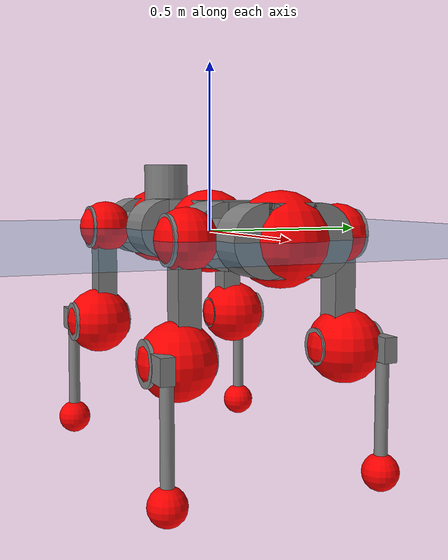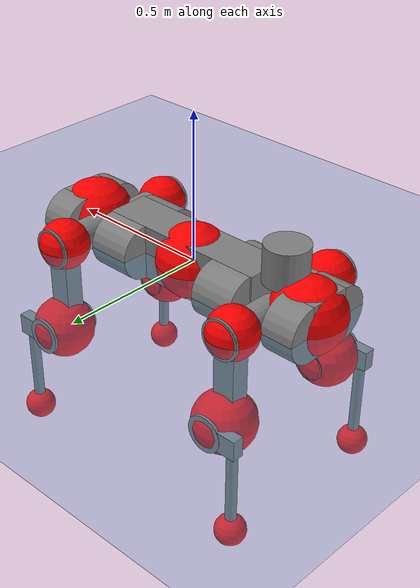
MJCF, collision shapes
<mujoco model="anymal_c">
  <compiler angle="radian" assetdir="assets" balanceinertia="true" inertiafromgeom="false"/>

  <option timestep="0.005" density="1.2" viscosity="2e-05"/>

  <size nkey="1"/>

  <visual>
    <quality shadowsize="8192"/>
    <map shadowclip="0.5"/>
  </visual>

  <default>
    <default class="/">
      <material specular="0" shininess="0.25"/>
      <geom contype="0" conaffinity="0" group="1" solref="-1000 -80"/>
      <site size="0.01 0.005 0.005" group="5"/>
      <general forcelimited="true" forcerange="-80 80" biastype="affine" gainprm="80" biasprm="0 -80 -2"/>
      <default class="anymal_c">
        <joint armature="0.01" damping="0.01" frictionloss="0.1"/>
        <default class="visual">
          <geom type="mesh" group="2"/>
          <default class="visual_zflip"/>
        </default>
        <default class="collision">
          <geom type="cylinder" group="3"/>
          <default class="foot">
            <geom size="0.03 0 0" type="sphere" condim="6" priority="1" friction="0.8 0.02 0.01" solimp="0.015 1 0.03"/>
          </default>
        </default>
      </default>
      <default class="reward_collision_sphere">
        <geom group="5" rgba="1 0 0 1"/>
      </default>
    </default>
  </default>

  <asset>
    <texture type="skybox" colorspace="auto" name="//unnamed_texture_0" builtin="gradient" rgb1="0.95 0.95 0.95" rgb2="0.95 0.95 0.95" width="100" height="600"/>
    <texture type="2d" colorspace="auto" name="texplane" builtin="checker" rgb1="0.345 0.575 0.748" rgb2="0.345 0.575 0.748" markrgb="1 1 1" width="512" height="512"/>
    <texture type="2d" colorspace="linear" name="base" file="base.png"/>
    <texture type="2d" colorspace="linear" name="top_shell" file="top_shell.png"/>
    <texture type="2d" colorspace="linear" name="bottom_shell" file="bottom_shell.png"/>
    <texture type="2d" colorspace="linear" name="remote" file="remote.png"/>
    <texture type="2d" colorspace="linear" name="hatch" file="hatch.png"/>
    <texture type="2d" colorspace="linear" name="handle" file="handle.png"/>
    <texture type="2d" colorspace="linear" name="face" file="face.png"/>
    <texture type="2d" colorspace="linear" name="battery" file="battery.png"/>
    <texture type="2d" colorspace="linear" name="lidar_cage" file="lidar_cage.png"/>
    <texture type="2d" colorspace="linear" name="depth_camera" file="depth_camera.png"/>
    <texture type="2d" colorspace="linear" name="wide_angle_camera" file="wide_angle_camera.png"/>
    <texture type="2d" colorspace="linear" name="lidar" file="lidar.png"/>
    <texture type="2d" colorspace="linear" name="drive" file="drive.png"/>
    <texture type="2d" colorspace="linear" name="hip_l" file="hip_l.png"/>
    <texture type="2d" colorspace="linear" name="shank_l" file="shank_l.png"/>
    <texture type="2d" colorspace="linear" name="foot" file="foot.png"/>
    <texture type="2d" colorspace="linear" name="thigh" file="thigh.png"/>
    <texture type="2d" colorspace="linear" name="shank_r" file="shank_r.png"/>
    <texture type="2d" colorspace="linear" name="hip_r" file="hip_r.png"/>
    <material name="MatPlane" class="/" texture="texplane" texuniform="true" texrepeat="2 2" specular="0.9" shininess="0.5"/>
    <material name="black_plastic" class="/" rgba="0.007 0.007 0.007 1"/>
    <material name="green" class="/" rgba="0.052 0.178 0.033 1"/>
    <material name="red" class="/" rgba="0.178 0.006 0.005 1"/>
    <material name="yellow" class="/" rgba="0.178 0.119 0.006 1"/>
    <material name="lwl" class="/" rgba="0.8 0.8 0.8 1"/>
    <material name="base" class="/" texture="base"/>
    <material name="top_shell" class="/" texture="top_shell"/>
    <material name="bottom_shell" class="/" texture="bottom_shell"/>
    <material name="hip_l" class="/" texture="hip_l"/>
    <material name="thigh" class="/" texture="thigh"/>
    <material name="shank_l" class="/" texture="shank_l"/>
    <material name="foot" class="/" texture="foot"/>
    <material name="hip_r" class="/" texture="hip_r"/>
    <material name="shank" class="/" texture="shank_r"/>
    <material name="hatch" class="/" texture="hatch"/>
    <material name="remote" class="/" texture="remote"/>
    <material name="handle" class="/" texture="handle"/>
    <material name="face" class="/" texture="face"/>
    <material name="depth_camera" class="/" texture="depth_camera"/>
    <material name="wide_angle_camera" class="/" texture="wide_angle_camera"/>
    <material name="battery" class="/" texture="battery"/>
    <material name="lidar_cage" class="/" texture="lidar_cage"/>
    <material name="lidar" class="/" texture="lidar"/>
    <material name="drive" class="/" texture="drive"/>
    <mesh name="base_0" class="/" file="base_0.obj"/>
    <mesh name="base_1" class="/" file="base_1.obj"/>
    <mesh name="base_2" class="/" file="base_2.obj"/>
    <mesh name="base_3" class="/" file="base_3.obj"/>
    <mesh name="base_4" class="/" file="base_4.obj"/>
    <mesh name="base_5" class="/" file="base_5.obj"/>
    <mesh name="top_shell" class="/" file="top_shell.obj"/>
    <mesh name="bottom_shell" class="/" file="bottom_shell.obj"/>
    <mesh name="remote" class="/" file="remote.obj"/>
    <mesh name="handle" class="/" file="handle.obj"/>
    <mesh name="face" class="/" file="face.obj"/>
    <mesh name="wide_angle_camera" class="/" file="wide_angle_camera.obj"/>
    <mesh name="depth_camera" class="/" file="depth_camera.obj"/>
    <mesh name="battery" class="/" file="battery.obj"/>
    <mesh name="lidar_cage" class="/" file="lidar_cage.obj"/>
    <mesh name="lidar" class="/" file="lidar.obj"/>
    <mesh name="drive" class="/" file="drive.obj"/>
    <mesh name="hip_l" class="/" file="hip_l.obj"/>
    <mesh name="thigh" class="/" file="thigh.obj"/>
    <mesh name="shank_l" class="/" file="shank_l.obj"/>
    <mesh name="foot" class="/" file="foot.obj"/>
    <mesh name="hip_r" class="/" file="hip_r.obj"/>
    <mesh name="hatch" class="/" file="hatch.obj"/>
    <mesh name="shank_r" class="/" file="shank_r.obj"/>
  </asset>

  <worldbody>
    <geom name="floor" class="/" size="100 100 0.125" type="plane" group="0" material="MatPlane"/>
    <light name="toplight_shadow" class="/" pos="0 0 5" dir="0.0990148 0.0990148 -0.990148" type="directional" ambient="0.04 0.04 0.04" diffuse="0.55 0.55 0.55" specular="0.12 0.12 0.12"/>
    <light name="toplight_fill" class="/" pos="0 0 5" dir="0.0990148 0.0990148 -0.990148" type="directional" castshadow="false" ambient="0.04 0.04 0.04" diffuse="0.3 0.3 0.3" specular="0.08 0.08 0.08"/>
    <body name="trunk" childclass="anymal_c" pos="0.000276869 -0.00266326 -0.000372708" quat="1 1.39374e-05 1.84615e-05 -1.47581e-06">
      <inertial pos="0.0016713 -0.0028267 0.0542651" quat="0.496012 0.493071 0.506613 0.504178" mass="20.3552" diaginertia="0.655955 0.685211 0.29861"/>
      <joint name="//unnamed_joint_0" type="free" armature="0" damping="0" frictionloss="0"/>
      <geom name="//unnamed_geom_1" class="visual" material="green" mesh="base_0"/>
      <geom name="//unnamed_geom_2" class="visual" material="yellow" mesh="base_1"/>
      <geom name="//unnamed_geom_3" class="visual" material="red" mesh="base_2"/>
      <geom name="//unnamed_geom_4" class="visual" material="black_plastic" mesh="base_3"/>
      <geom name="//unnamed_geom_5" class="visual" material="lwl" mesh="base_4"/>
      <geom name="//unnamed_geom_6" class="visual" material="base" mesh="base_5"/>
      <geom name="trunk_1" class="collision" size="0.300418 0.0725147 0.0932332" type="box"/>
      <geom name="trunk_2" class="collision" size="0.0932332 0.0751045" pos="0.220271 0.0716996 0" quat="0.707107 0 0.707107 0"/>
      <geom name="trunk_3" class="collision" size="0.0932332 0.0751045" pos="-0.220271 0.0716996 0" quat="0.707107 0 0.707107 0"/>
      <geom name="trunk_4" class="collision" size="0.0932332 0.0751045" pos="0.220271 -0.0716996 0" quat="0.707107 0 0.707107 0"/>
      <geom name="trunk_5" class="collision" size="0.0932332 0.0751045" pos="-0.220271 -0.0716996 0" quat="0.707107 0 0.707107 0"/>
      <geom name="//unnamed_geom_12" class="visual" material="top_shell" mesh="top_shell"/>
      <geom name="//unnamed_geom_13" class="visual" material="bottom_shell" mesh="bottom_shell"/>
      <geom name="//unnamed_geom_14" class="visual" material="remote" mesh="remote"/>
      <geom name="//unnamed_geom_15" class="visual" material="handle" mesh="handle"/>
      <geom name="//unnamed_geom_16" class="visual" pos="0.419781 0 0" quat="1 0 0 0" material="face" mesh="face"/>
      <geom name="trunk_6" class="collision" size="0.0569758 0.0725147 0.0932332" pos="0.475481 0 0" type="box"/>
      <geom name="//unnamed_geom_18" class="collision" size="0.0932332 0.0569758" pos="0.475481 0.0716996 0" quat="0.707107 0 0.707107 0"/>
      <geom name="//unnamed_geom_19" class="collision" size="0.0932332 0.0569758" pos="0.475481 -0.0716996 0" quat="0.707107 0 0.707107 0"/>
      <geom name="//unnamed_geom_20" class="visual" pos="0.467534 0 -0.0317069" quat="0.965926 0 0.258819 0" material="depth_camera" mesh="depth_camera"/>
      <geom name="//unnamed_geom_21" class="visual" pos="0.519536 0 0.0160292" material="wide_angle_camera" mesh="wide_angle_camera"/>
      <geom name="//unnamed_geom_22" class="visual_zflip" pos="-0.419781 0 0" quat="0 0 0 1" material="face" mesh="face"/>
      <geom name="trunk_7" class="collision" size="0.0569758 0.0725147 0.0932332" pos="-0.475481 0 0" quat="0 0 0 1" type="box"/>
      <geom name="//unnamed_geom_24" class="collision" size="0.0932332 0.0569758" pos="-0.475481 -0.0716996 0" quat="0 -0.707107 0 0.707107"/>
      <geom name="//unnamed_geom_25" class="collision" size="0.0932332 0.0569758" pos="-0.475481 0.0716996 0" quat="0 -0.707107 0 0.707107"/>
      <geom name="//unnamed_geom_26" class="visual" pos="-0.467534 0 -0.0317069" quat="0 -0.258819 0 0.965926" material="depth_camera" mesh="depth_camera"/>
      <geom name="//unnamed_geom_27" class="visual_zflip" pos="-0.519536 0 0.0160292" quat="0 0 0 1" material="wide_angle_camera" mesh="wide_angle_camera"/>
      <geom name="//unnamed_geom_28" class="visual" material="battery" mesh="battery"/>
      <geom name="//unnamed_geom_29" class="visual" pos="0 0.0784702 0.0306645" quat="0.683013 -0.183013 0.183013 0.683013" material="depth_camera" mesh="depth_camera"/>
      <geom name="//unnamed_geom_30" class="visual" pos="0 -0.0784702 0.0306645" quat="0.683013 0.183013 0.183013 -0.683013" material="depth_camera" mesh="depth_camera"/>
      <geom name="//unnamed_geom_31" class="visual" pos="-0.368637 0 0.0787003" quat="1 0 0 0" material="lidar_cage" mesh="lidar_cage"/>
      <geom name="trunk_8" class="collision" size="0.0725147 0.0621554" pos="-0.368637 0 0.142945"/>
      <geom name="//unnamed_geom_33" class="visual" pos="-0.368637 4.53366e-06 0.152261" quat="0.707107 0 0 -0.707107" material="lidar" mesh="lidar"/>
      <geom name="//unnamed_geom_34" class="visual" pos="0.303721 0.106542 -8.01668e-10" quat="0.258819 0.965926 0 0" material="drive" mesh="drive"/>
      <geom name="//unnamed_geom_35" class="visual" pos="0.303721 -0.106542 8.01668e-10" quat="0.258819 -0.965926 0 0" material="drive" mesh="drive"/>
      <geom name="//unnamed_geom_36" class="visual" pos="-0.303721 0.106542 8.01668e-10" quat="0 0 0.965926 -0.258819" material="drive" mesh="drive"/>
      <geom name="//unnamed_geom_37" class="visual" pos="-0.303721 -0.106542 -8.01668e-10" quat="0 0 -0.965926 -0.258819" material="drive" mesh="drive"/>
      <geom name="//unnamed_geom_38" class="visual" pos="0.117478 0 0.078165" quat="1 0 0 0" material="hatch" mesh="hatch"/>
      <geom name="//unnamed_geom_39" class="reward_collision_sphere" size="0.124311"/>
      <geom name="//unnamed_geom_40" class="reward_collision_sphere" size="0.124311" pos="0.455733 0 0"/>
      <geom name="//unnamed_geom_41" class="reward_collision_sphere" size="0.124311" pos="-0.455733 0 0"/>
      <site name="imu" pos="0.26495 0.0170075 0.0362525" size="0.0103592"/>
      <camera name="track" pos="0 -2.04856 0" quat="0.707107 0.707107 0 0" mode="trackcom"/>
      <camera name="ego_camera" pos="0.455733 0 -0.0428301" quat="-0.5 -0.5 0.5 0.5"/>
      <body name="LF_HIP" pos="0.306435 0.109217 0.00287653" quat="0.258186 0.966095 3.60598e-05 -0.00111859">
        <inertial pos="0.0583792 -0.0154628 -0.00769239" quat="-0.130376 0.710458 -0.136214 0.67801" mass="2.96796" diaginertia="0.00622996 0.0052895 0.00463385"/>
        <joint name="LF_HAA" pos="0 0 0" axis="0.999996 -0.00211487 -0.00169484" stiffness="0.00289198" range="-0.675036 0.513596" armature="0.0101299" damping="0" frictionloss="0.115308"/>
        <geom name="//unnamed_geom_42" class="visual" pos="0 -4.71585e-05 7.74574e-06" quat="0.258819 -0.965926 0 0" material="hip_l" mesh="hip_l"/>
        <geom name="//unnamed_geom_43" class="visual" pos="0.0606631 -0.0736747 -0.0428799" quat="0.183013 -0.683013 0.683013 0.183013" material="drive" mesh="drive"/>
        <geom name="//unnamed_geom_44" class="collision" size="0.0517962 0.0725147" pos="0.0606631 -0.0122502 -0.00739355" quat="-0.353553 -0.612372 0.612372 -0.353553"/>
        <body name="LF_THIGH" pos="0.0606761 -0.0723057 -0.0443415" quat="0.182327 -0.683208 0.683278 0.181975">
          <inertial pos="0.0338671 0.00195047 -0.263987" quat="0.993305 -0.00340212 -0.0891983 0.0733324" mass="3.41217" diaginertia="0.0321691 0.0339399 0.00594927"/>
          <joint name="LF_HFE" pos="0 0 0" axis="0.999916 0.00111714 0.0129365" range="-3.12709 3.19337" armature="0.0117898" damping="0.00211994" frictionloss="0.104538"/>
          <geom name="//unnamed_geom_45" class="visual" pos="-0.000229596 -3.6179e-07 0" quat="0.707107 0 0 -0.707107" material="thigh" mesh="thigh"/>
          <geom name="//unnamed_geom_46" class="collision" size="0.0673351 0.041437" pos="0.0405096 0 0" quat="0.5 0.5 -0.5 -0.5"/>
          <geom name="//unnamed_geom_47" class="collision" size="0.0388472 0.0310777 0.146391" pos="0.0303822 0 -0.151312" quat="0.707107 0 0 -0.707107" type="box"/>
          <geom name="//unnamed_geom_48" class="visual" pos="0.101578 0 -0.305165" quat="1 0 0 0" material="drive" mesh="drive"/>
          <geom name="//unnamed_geom_49" class="collision" size="0.0517962 0.0725147" pos="0.030686 0 -0.305165" quat="0.707107 0 0.707107 0"/>
          <geom name="//unnamed_geom_50" class="reward_collision_sphere" size="0.0828739" pos="0.0253185 0 0"/>
          <body name="LF_SHANK" pos="0.102042 -0.00284251 -0.306258" quat="1 -4.2921e-05 0.000733334 -0.000380687">
            <inertial pos="0.00772869 -0.0627658 -0.0888597" quat="0.992804 -0.117186 -0.00106528 -0.0246213" mass="0.658936" diaginertia="0.010444 0.0107285 0.00152055"/>
            <joint name="LF_KFE" pos="0 0 0" axis="1 -0.00056854 8.83664e-05" range="-3.19056 3.14135" armature="0.00929647" damping="0.00803162" frictionloss="0.103946"/>
            <geom name="//unnamed_geom_51" class="visual" pos="-7.48662e-05 -0.000399191 0" quat="0.707107 0 0 -0.707107" material="shank_l" mesh="shank_l"/>
            <geom name="LF_kfe_act" class="collision" size="0.0621554 0.0207185" pos="0.0202548 0 0" quat="0.5 0.5 -0.5 -0.5"/>
            <geom name="//unnamed_geom_53" class="collision" size="0.0595646 0.0349624 0.0196826" pos="0.0202548 -0.0588951 0" quat="0.5 0.5 -0.5 -0.5" type="box"/>
            <geom name="//unnamed_geom_54" class="visual" pos="0.0132163 -0.090214 -0.361882" quat="0.382683 0 0 -0.92388" material="foot" mesh="foot"/>
            <geom name="LF_calf" class="collision" size="0.0181287 0.146326" pos="0.0132163 -0.0900854 -0.180941" quat="0.707107 0 0 -0.707107"/>
            <geom name="LF_foot" class="foot" size="0.0303096" pos="0.0132163 -0.0900854 -0.33779" quat="0.707107 0 0 -0.707107"/>
            <geom name="//unnamed_geom_57" class="reward_collision_sphere" size="0.103592" pos="-0.050637 0 0"/>
            <geom name="//unnamed_geom_58" class="reward_collision_sphere" size="0.0517962" pos="0.0132163 -0.0900854 -0.33779"/>
            <site name="LF_foot" class="foot" pos="0.0132163 -0.0900854 -0.33779" quat="0.707107 0 0 -0.707107" size="0.0103592"/>
          </body>
        </body>
      </body>
      <body name="RF_HIP" pos="0.304579 -0.108466 -7.47268e-05" quat="0.25875 -0.965944 6.28526e-05 -0.000230364">
        <inertial pos="0.0575512 0.0150288 -0.00992993" quat="0.135392 0.679579 0.12809 0.709531" mass="2.97439" diaginertia="0.00625638 0.00537784 0.00477419"/>
        <joint name="RF_HAA" pos="0 0 0" axis="0.999914 0.00824292 0.0101994" range="-0.486664 0.712785" armature="0.0100905" damping="0.0076605" frictionloss="0.103279"/>
        <geom name="//unnamed_geom_59" class="visual" pos="0 4.71581e-05 7.74572e-06" quat="0.258819 0.965926 0 0" material="hip_r" mesh="hip_r"/>
        <geom name="//unnamed_geom_60" class="visual" pos="0.0606631 0.0736747 -0.0428799" quat="0.183013 0.683013 0.683013 -0.183013" material="drive" mesh="drive"/>
        <geom name="//unnamed_geom_61" class="collision" size="0.0517962 0.0725147" pos="0.0606631 0.0122502 -0.00739355" quat="-0.353553 0.612372 0.612372 0.353553"/>
        <body name="RF_THIGH" pos="0.0635553 0.0762903 -0.04358" quat="0.182554 0.683283 0.682722 -0.183544">
          <inertial pos="0.0301736 -0.00238768 -0.26308" quat="0.992975 -0.00670577 -0.0860119 0.0809757" mass="3.63916" diaginertia="0.0332509 0.0348051 0.00607234"/>
          <joint name="RF_HFE" pos="0 0 0" axis="0.999986 0.000169198 -0.00521621" range="-3.19622 3.14216" armature="0.0100317" damping="0.00612936" frictionloss="0.103278"/>
          <geom name="//unnamed_geom_62" class="visual" pos="-0.000229596 -3.6179e-07 0" quat="0.707107 0 0 -0.707107" material="thigh" mesh="thigh"/>
          <geom name="//unnamed_geom_63" class="collision" size="0.0673351 0.041437" pos="0.0405096 0 0" quat="0.5 0.5 0.5 0.5"/>
          <geom name="//unnamed_geom_64" class="collision" size="0.0388472 0.0310777 0.146391" pos="0.0303822 0 -0.151312" quat="0.707107 0 0 0.707107" type="box"/>
          <geom name="//unnamed_geom_65" class="visual" pos="0.101578 0 -0.305165" quat="1 0 0 0" material="drive" mesh="drive"/>
          <geom name="//unnamed_geom_66" class="collision" size="0.0517962 0.0725147" pos="0.030686 0 -0.305165" quat="0.707107 0 0.707107 0"/>
          <geom name="//unnamed_geom_67" class="reward_collision_sphere" size="0.0828739" pos="0.0253185 0 0"/>
          <body name="RF_SHANK" pos="0.0988742 -0.00156329 -0.306906" quat="0.999999 0.000253406 0.00129281 0.000582737">
            <inertial pos="0.00608569 0.062413 -0.0837837" quat="0.991762 0.125281 -0.00389288 0.0264009" mass="0.650762" diaginertia="0.0106823 0.0103685 0.00156691"/>
            <joint name="RF_KFE" pos="0 0 0" axis="0.99991 0.00942043 0.00957861" range="-3.15758 3.13509" armature="0.0116797" damping="0.0238342" frictionloss="0.0891693"/>
            <geom name="//unnamed_geom_68" class="visual" pos="-7.48658e-05 0.00039919 0" quat="0.707107 0 0 0.707107" material="shank" mesh="shank_r"/>
            <geom name="RF_kfe_act" class="collision" size="0.0621554 0.0207185" pos="0.0202548 0 0" quat="0.5 0.5 0.5 0.5"/>
            <geom name="//unnamed_geom_70" class="collision" size="0.0595646 0.0349624 0.0196826" pos="0.0202548 0.0588951 0" quat="0.5 0.5 0.5 0.5" type="box"/>
            <geom name="//unnamed_geom_71" class="visual" pos="0.0132162 0.090214 -0.361882" quat="0.382683 0 0 0.92388" material="foot" mesh="foot"/>
            <geom name="RF_calf" class="collision" size="0.0181287 0.146326" pos="0.0132163 0.0900854 -0.180941" quat="0.707107 0 0 0.707107"/>
            <geom name="RF_foot" class="foot" size="0.0266963" pos="0.0132163 0.0900854 -0.33779" quat="0.707107 0 0 0.707107"/>
            <geom name="//unnamed_geom_74" class="reward_collision_sphere" size="0.103592" pos="-0.050637 0 0"/>
            <geom name="//unnamed_geom_75" class="reward_collision_sphere" size="0.0517962" pos="0.0132163 0.0900854 -0.33779"/>
            <site name="RF_foot" class="foot" pos="0.0132163 0.0900854 -0.33779" quat="0.707107 0 0 0.707107" size="0.0103592"/>
          </body>
        </body>
      </body>
      <body name="LH_HIP" pos="-0.304557 0.106197 1.2647e-05" quat="-0.000194743 -4.37449e-05 0.965926 -0.258819">
        <inertial pos="0.057641 0.012714 -0.00744214" quat="0.133235 0.680089 0.129394 0.709214" mass="3.09096" diaginertia="0.00626189 0.00558923 0.00467038"/>
        <joint name="LH_HAA" pos="0 0 0" axis="0.999984 0.00566647 -0.000368729" range="-0.51396 0.714787" armature="0.0104569" damping="0.0101394" frictionloss="0.0981066"/>
        <geom name="//unnamed_geom_76" class="visual" pos="0 4.71581e-05 7.74572e-06" quat="-0.258819 -0.965926 0 0" material="hip_r" mesh="hip_r"/>
        <geom name="//unnamed_geom_77" class="visual" pos="0.0606631 0.0736747 -0.0428799" quat="0.183013 0.683013 0.683013 -0.183013" material="drive" mesh="drive"/>
        <geom name="//unnamed_geom_78" class="collision" size="0.0517962 0.0725147" pos="0.0606631 0.0122502 -0.00739355" quat="-0.353553 0.612372 0.612372 0.353553"/>
        <body name="LH_THIGH" pos="0.0576963 0.075471 -0.0465663" quat="0.183311 0.68295 0.683008 -0.182968">
          <inertial pos="0.0311837 0.000713537 -0.265527" quat="0.991921 -0.00671392 -0.0891892 0.0899555" mass="3.51594" diaginertia="0.0325815 0.0339929 0.00592638"/>
          <joint name="LH_HFE" pos="0 0 0" axis="0.999993 -0.00311465 -0.00212024" range="-3.19639 3.17943" armature="0.0102269" damping="0" frictionloss="0.105993"/>
          <geom name="//unnamed_geom_79" class="visual" pos="-0.000229596 -3.6179e-07 0" quat="0.707107 0 0 -0.707107" material="thigh" mesh="thigh"/>
          <geom name="//unnamed_geom_80" class="collision" size="0.0673351 0.041437" pos="0.0405096 0 0" quat="0.5 0.5 -0.5 -0.5"/>
          <geom name="//unnamed_geom_81" class="collision" size="0.0388472 0.0310777 0.146391" pos="0.0303822 0 -0.151312" quat="0.707107 0 0 -0.707107" type="box"/>
          <geom name="//unnamed_geom_82" class="visual" pos="0.101578 0 -0.305165" quat="1 0 0 0" material="drive" mesh="drive"/>
          <geom name="//unnamed_geom_83" class="collision" size="0.0517962 0.0725147" pos="0.030686 0 -0.305165" quat="0.707107 0 0.707107 0"/>
          <geom name="//unnamed_geom_84" class="reward_collision_sphere" size="0.0828739" pos="0.0253185 0 0"/>
          <body name="LH_SHANK" pos="0.0995574 -0.00208674 -0.305594" quat="1 0.000118853 -7.75297e-05 -0.000286181">
            <inertial pos="0.00591666 0.0627058 -0.0851685" quat="0.99284 0.116438 -0.0011282 0.0266258" mass="0.686053" diaginertia="0.0114696 0.0106351 0.0016144"/>
            <joint name="LH_KFE" pos="0 0 0" axis="0.99986 -0.00137146 0.0166737" range="-3.09497 3.08788" armature="0.0107002" damping="0.00224866" frictionloss="0.101198"/>
            <geom name="//unnamed_geom_85" class="visual" pos="-7.48658e-05 0.00039919 0" quat="-0.707107 0 0 -0.707107" material="shank" mesh="shank_r"/>
            <geom name="LH_kfe_act" class="collision" size="0.0621554 0.0207185" pos="0.0202548 0 0" quat="0.5 0.5 -0.5 -0.5"/>
            <geom name="//unnamed_geom_87" class="collision" size="0.0595646 0.0349624 0.0196826" pos="0.0202548 0.0588951 0" quat="0.5 0.5 -0.5 -0.5" type="box"/>
            <geom name="//unnamed_geom_88" class="visual" pos="0.0132162 0.090214 -0.361882" quat="-0.382683 0 0 -0.92388" material="foot" mesh="foot"/>
            <geom name="LH_calf" class="collision" size="0.0181287 0.146326" pos="0.0132163 0.0900854 -0.180941" quat="0.707107 0 0 -0.707107"/>
            <geom name="LH_foot" class="foot" size="0.0327639" pos="0.0132163 0.0900854 -0.33779" quat="0.707107 0 0 -0.707107"/>
            <geom name="//unnamed_geom_91" class="reward_collision_sphere" size="0.103592" pos="-0.050637 0 0"/>
            <geom name="//unnamed_geom_92" class="reward_collision_sphere" size="0.0517962" pos="0.0132163 0.0900854 -0.33779"/>
            <site name="LH_foot" class="foot" pos="0.0132163 0.0900854 -0.33779" quat="0.707107 0 0 -0.707107" size="0.0103592"/>
          </body>
        </body>
      </body>
      <body name="RH_HIP" pos="-0.304454 -0.104059 -0.000272628" quat="-0.000234579 -0.00107158 -0.966102 -0.258159">
        <inertial pos="0.0566482 -0.012987 -0.0113298" quat="-0.126875 0.710973 -0.131227 0.679117" mass="3.17272" diaginertia="0.00658121 0.00567575 0.00489139"/>
        <joint name="RH_HAA" pos="0 0 0" axis="0.999917 0.012907 0.000580569" range="-0.704557 0.437764" armature="0.0102229" damping="0.0148884" frictionloss="0.10047"/>
        <geom name="//unnamed_geom_93" class="visual" pos="0 -4.71585e-05 7.74574e-06" quat="-0.258819 0.965926 0 0" material="hip_l" mesh="hip_l"/>
        <geom name="//unnamed_geom_94" class="visual" pos="0.0606631 -0.0736747 -0.0428799" quat="-0.183013 0.683013 -0.683013 -0.183013" material="drive" mesh="drive"/>
        <geom name="//unnamed_geom_95" class="collision" size="0.0517962 0.0725147" pos="0.0606631 -0.0122502 -0.00739355" quat="0.353553 0.612372 -0.612372 0.353553"/>
        <body name="RH_THIGH" pos="0.0609816 -0.0718438 -0.0437247" quat="-0.183356 0.683695 -0.68254 -0.181884">
          <inertial pos="0.0315517 -0.00274136 -0.260928" quat="0.992979 -0.00873701 -0.0839275 0.0829057" mass="3.34831" diaginertia="0.0313497 0.0331222 0.00574717"/>
          <joint name="RH_HFE" pos="0 0 0" axis="0.999915 0.0122985 0.00430931" range="-3.16241 3.1809" armature="0.0102126" damping="0.0121523" frictionloss="0.0980695"/>
          <geom name="//unnamed_geom_96" class="visual" pos="-0.000229596 -3.6179e-07 0" quat="0.707107 0 0 -0.707107" material="thigh" mesh="thigh"/>
          <geom name="//unnamed_geom_97" class="collision" size="0.0673351 0.041437" pos="0.0405096 0 0" quat="0.5 0.5 0.5 0.5"/>
          <geom name="//unnamed_geom_98" class="collision" size="0.0388472 0.0310777 0.146391" pos="0.0303822 0 -0.151312" quat="0.707107 0 0 0.707107" type="box"/>
          <geom name="//unnamed_geom_99" class="visual" pos="0.101578 0 -0.305165" quat="1 0 0 0" material="drive" mesh="drive"/>
          <geom name="//unnamed_geom_100" class="collision" size="0.0517962 0.0725147" pos="0.030686 0 -0.305165" quat="0.707107 0 0.707107 0"/>
          <geom name="//unnamed_geom_101" class="reward_collision_sphere" size="0.0828739" pos="0.0253185 0 0"/>
          <body name="RH_SHANK" pos="0.0993836 -0.0011858 -0.306832" quat="1 -0.000129515 0.000190979 0.000350031">
            <inertial pos="0.00780692 -0.0626203 -0.0858651" quat="0.992873 -0.116635 -0.000907342 -0.0244836" mass="0.656224" diaginertia="0.0112415 0.0105252 0.00156065"/>
            <joint name="RH_KFE" pos="0 0 0" axis="0.999952 0.00563609 -0.0080144" range="-3.18205 3.18953" armature="0.00891138" damping="0.0104524" frictionloss="0.104884"/>
            <geom name="//unnamed_geom_102" class="visual" pos="-7.48662e-05 -0.000399191 0" quat="0.707107 0 0 -0.707107" material="shank_l" mesh="shank_l"/>
            <geom name="RH_kfe_act" class="collision" size="0.0621554 0.0207185" pos="0.0202548 0 0" quat="0.5 0.5 0.5 0.5"/>
            <geom name="//unnamed_geom_104" class="collision" size="0.0595646 0.0349624 0.0196826" pos="0.0202548 -0.0588951 0" quat="0.5 0.5 0.5 0.5" type="box"/>
            <geom name="//unnamed_geom_105" class="visual" pos="0.0132163 -0.090214 -0.361882" quat="0.382683 0 0 -0.92388" material="foot" mesh="foot"/>
            <geom name="RH_calf" class="collision" size="0.0181287 0.146326" pos="0.0132163 -0.0900854 -0.180941" quat="0.707107 0 0 0.707107"/>
            <geom name="RH_foot" class="foot" size="0.0288052" pos="0.0132163 -0.0900854 -0.33779" quat="0.707107 0 0 0.707107"/>
            <geom name="//unnamed_geom_108" class="reward_collision_sphere" size="0.103592" pos="-0.050637 0 0"/>
            <geom name="//unnamed_geom_109" class="reward_collision_sphere" size="0.0517962" pos="0.0132163 -0.0900854 -0.33779"/>
            <site name="RH_foot" class="foot" pos="0.0132163 -0.0900854 -0.33779" quat="0.707107 0 0 0.707107" size="0.0103592"/>
          </body>
        </body>
      </body>
    </body>
  </worldbody>

  <contact>
    <pair class="/" geom1="floor" geom2="LF_foot" name="//unnamed_contact_0"/>
    <pair class="/" geom1="floor" geom2="RF_foot" name="//unnamed_contact_1"/>
    <pair class="/" geom1="floor" geom2="LH_foot" name="//unnamed_contact_2"/>
    <pair class="/" geom1="floor" geom2="RH_foot" name="//unnamed_contact_3"/>
  </contact>

  <actuator>
    <general name="LF_HAA" class="/" joint="LF_HAA" forcerange="-89.9265 89.9265" gainprm="88.5387" biasprm="0 -88.5387 -2.14051"/>
    <general name="LF_HFE" class="/" joint="LF_HFE" forcerange="-76.4796 76.4796" gainprm="88.5387" biasprm="0 -88.5387 -2.14051"/>
    <general name="LF_KFE" class="/" joint="LF_KFE" forcerange="-86.5315 86.5315" gainprm="88.5387" biasprm="0 -88.5387 -2.14051"/>
    <general name="RF_HAA" class="/" joint="RF_HAA" forcerange="-91.698 91.698" gainprm="88.5387" biasprm="0 -88.5387 -2.14051"/>
    <general name="RF_HFE" class="/" joint="RF_HFE" forcerange="-92.5112 92.5112" gainprm="88.5387" biasprm="0 -88.5387 -2.14051"/>
    <general name="RF_KFE" class="/" joint="RF_KFE" forcerange="-90.6295 90.6295" gainprm="88.5387" biasprm="0 -88.5387 -2.14051"/>
    <general name="LH_HAA" class="/" joint="LH_HAA" forcerange="-86.3323 86.3323" gainprm="88.5387" biasprm="0 -88.5387 -2.14051"/>
    <general name="LH_HFE" class="/" joint="LH_HFE" forcerange="-79.7799 79.7799" gainprm="88.5387" biasprm="0 -88.5387 -2.14051"/>
    <general name="LH_KFE" class="/" joint="LH_KFE" forcerange="-80.0845 80.0845" gainprm="88.5387" biasprm="0 -88.5387 -2.14051"/>
    <general name="RH_HAA" class="/" joint="RH_HAA" forcerange="-75.1587 75.1587" gainprm="88.5387" biasprm="0 -88.5387 -2.14051"/>
    <general name="RH_HFE" class="/" joint="RH_HFE" forcerange="-85.502 85.502" gainprm="88.5387" biasprm="0 -88.5387 -2.14051"/>
    <general name="RH_KFE" class="/" joint="RH_KFE" forcerange="-83.381 83.381" gainprm="88.5387" biasprm="0 -88.5387 -2.14051"/>
  </actuator>

  <sensor>
    <gyro site="imu" name="imu_angular_velocity"/>
    <velocimeter site="imu" name="imu_linear_velocity"/>
    <framelinvel objtype="site" objname="LF_foot" name="LF_foot_global_linear_velocity"/>
    <framelinvel objtype="site" objname="RF_foot" name="RF_foot_global_linear_velocity"/>
    <framelinvel objtype="site" objname="LH_foot" name="LH_foot_global_linear_velocity"/>
    <framelinvel objtype="site" objname="RH_foot" name="RH_foot_global_linear_velocity"/>
  </sensor>

  <keyframe>
    <key name="home" qpos="0 0 0.55 1 0 0 0 0 0.4 -0.8 0 -0.4 0.8 0 -0.4 0.8 0 0.4 -0.8"/>
  </keyframe>
</mujoco>
